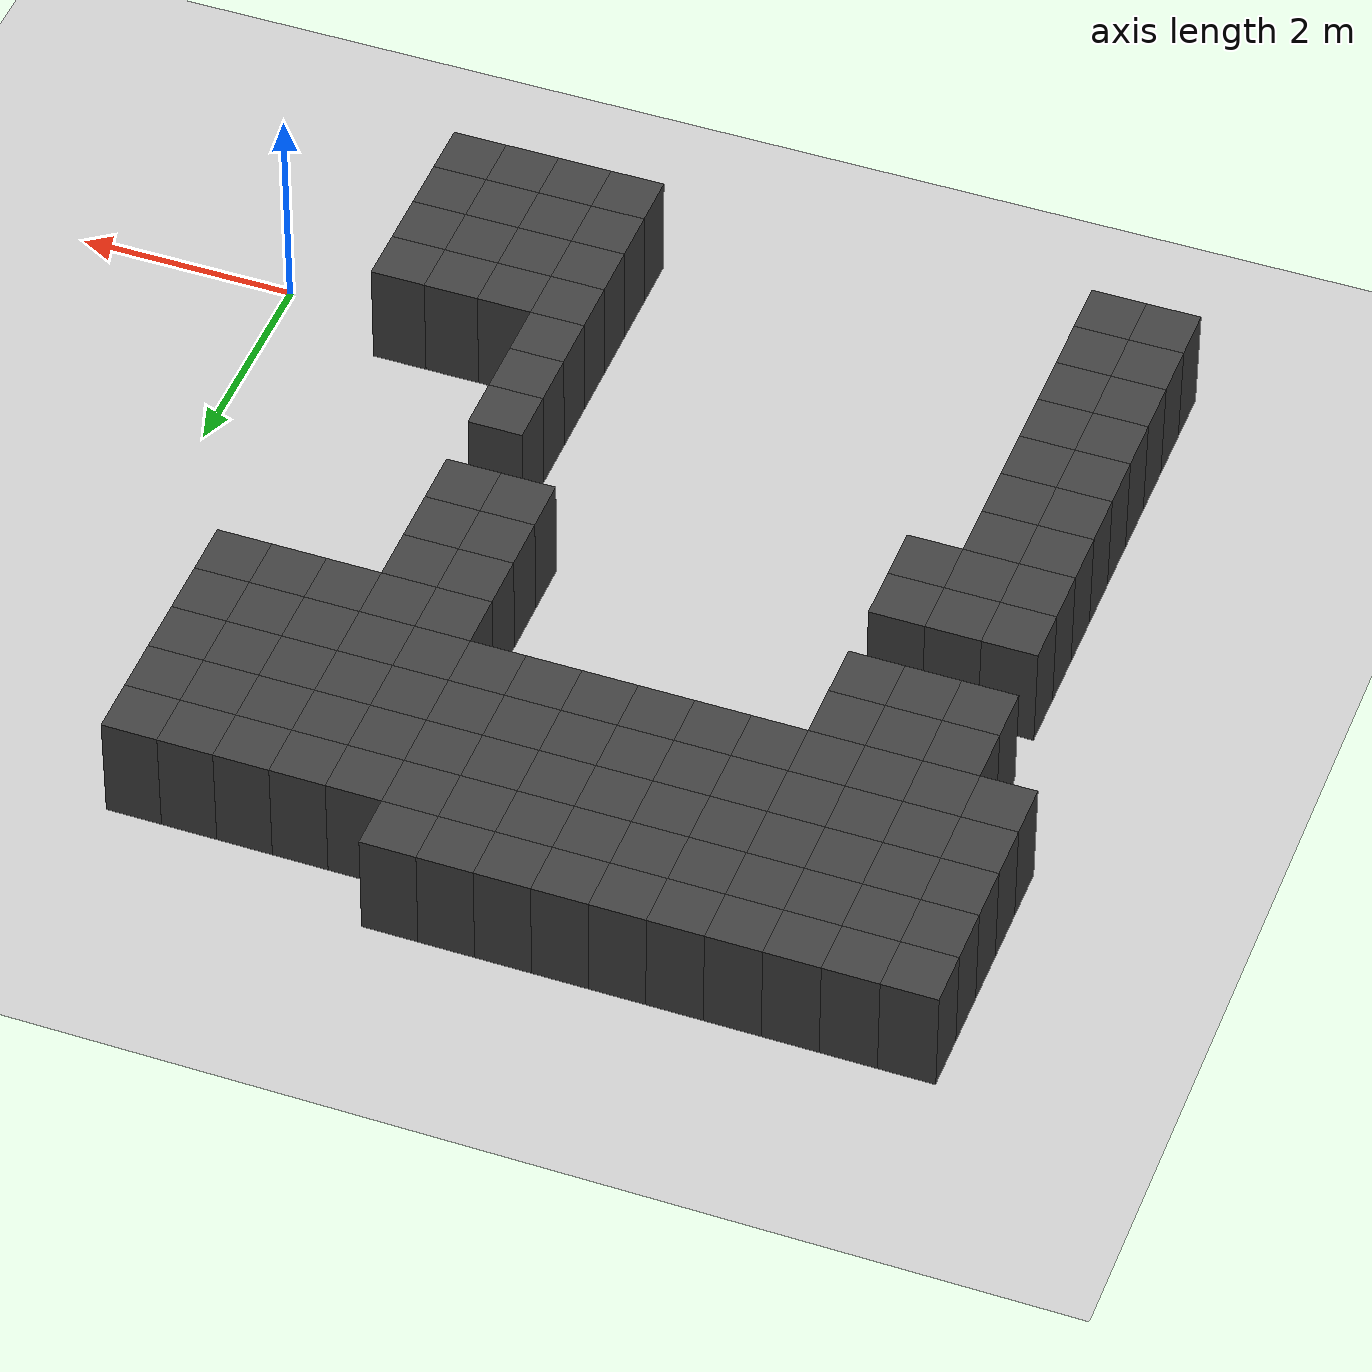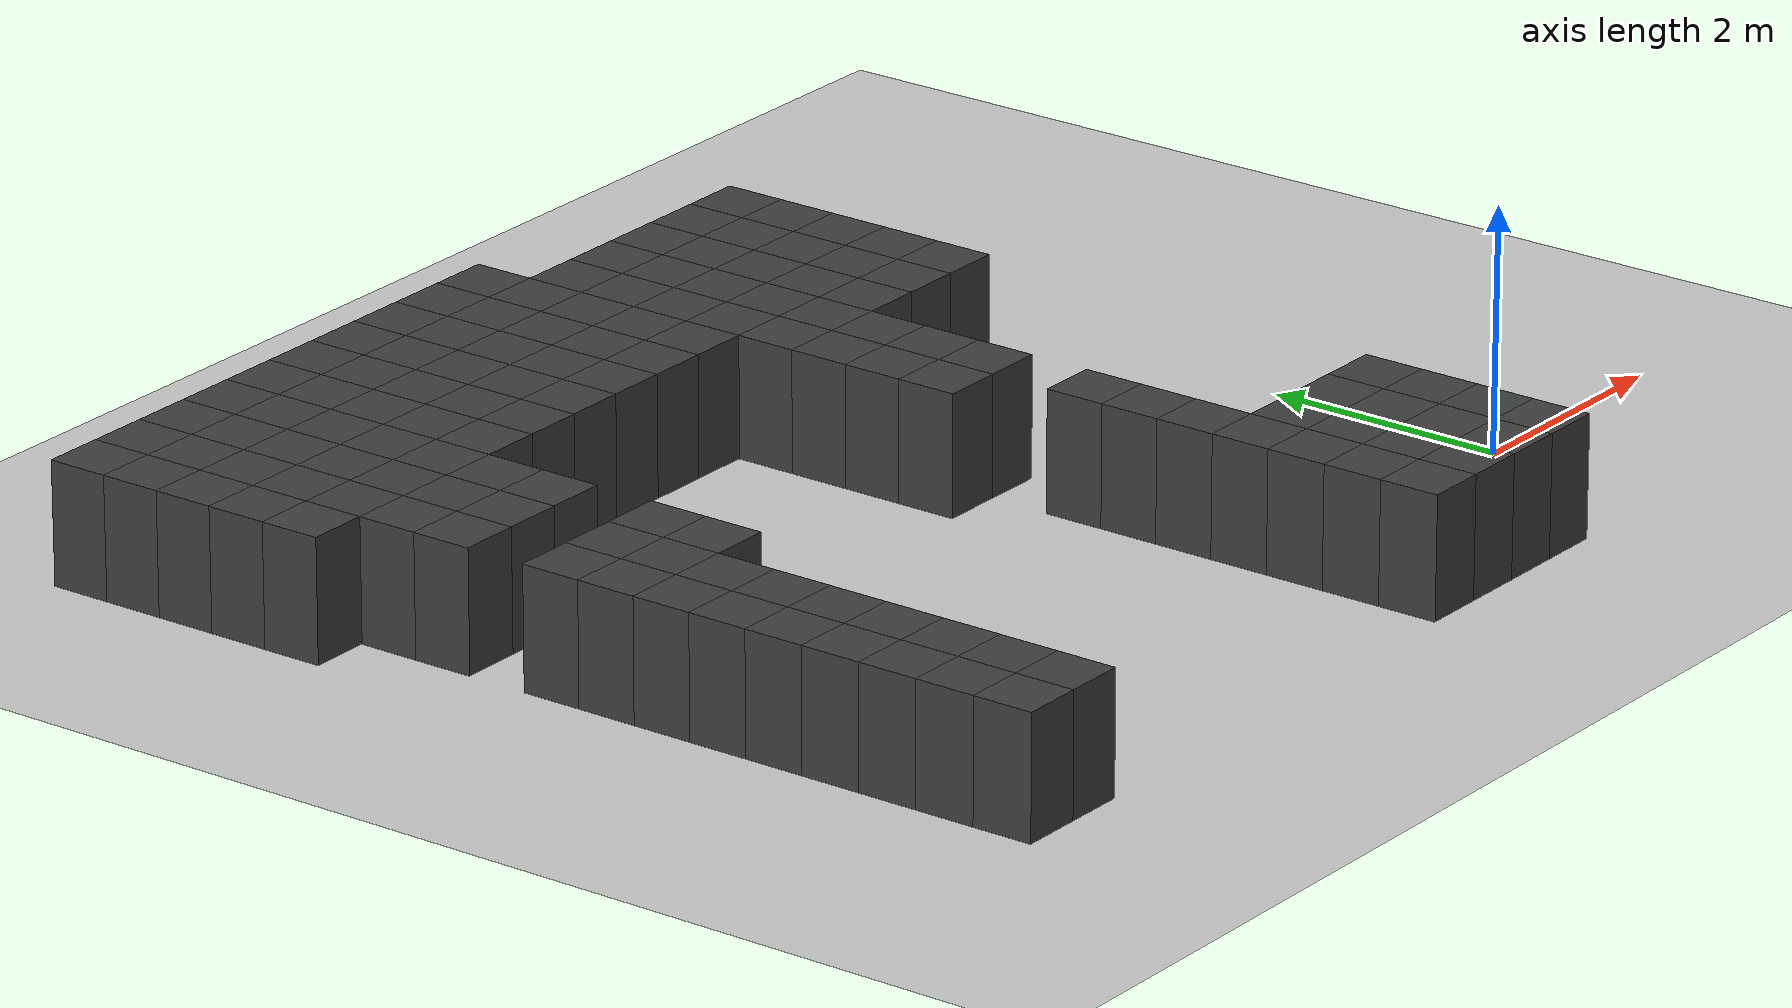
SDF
<sdf version="1.7">
 <world name="map_10764">
  <model name="ground_plane">
   <static>true</static>
   <link name="link">
    <collision name="collision">
     <geometry><plane><normal>0 0 1</normal><size>200 200</size></plane></geometry>
    </collision>
    <visual name="visual">
     <geometry><plane><normal>0 0 1</normal><size>200 200</size></plane></geometry>
     <material><ambient>0.8 0.8 0.8 1</ambient><diffuse>0.8 0.8 0.8 1</diffuse></material>
    </visual>
   </link>
  </model>
  <model name="maze_environment">
   <static>true</static>
   <link name="wall_502">
    <pose>-8.250 6.750 0.500 0 0 0</pose>
    <collision name="col"><geometry><box><size>0.5 0.5 1.0</size></box></geometry></collision>
    <visual name="vis">
     <geometry><box><size>0.5 0.5 1.0</size></box></geometry>
     <material><ambient>0.15 0.15 0.15 1</ambient><diffuse>0.25 0.25 0.25 1</diffuse></material>
    </visual>
   </link>
   <link name="wall_503">
    <pose>-7.750 6.750 0.500 0 0 0</pose>
    <collision name="col"><geometry><box><size>0.5 0.5 1.0</size></box></geometry></collision>
    <visual name="vis">
     <geometry><box><size>0.5 0.5 1.0</size></box></geometry>
     <material><ambient>0.15 0.15 0.15 1</ambient><diffuse>0.25 0.25 0.25 1</diffuse></material>
    </visual>
   </link>
   <link name="wall_504">
    <pose>-7.250 6.750 0.500 0 0 0</pose>
    <collision name="col"><geometry><box><size>0.5 0.5 1.0</size></box></geometry></collision>
    <visual name="vis">
     <geometry><box><size>0.5 0.5 1.0</size></box></geometry>
     <material><ambient>0.15 0.15 0.15 1</ambient><diffuse>0.25 0.25 0.25 1</diffuse></material>
    </visual>
   </link>
   <link name="wall_505">
    <pose>-6.750 6.750 0.500 0 0 0</pose>
    <collision name="col"><geometry><box><size>0.5 0.5 1.0</size></box></geometry></collision>
    <visual name="vis">
     <geometry><box><size>0.5 0.5 1.0</size></box></geometry>
     <material><ambient>0.15 0.15 0.15 1</ambient><diffuse>0.25 0.25 0.25 1</diffuse></material>
    </visual>
   </link>
   <link name="wall_506">
    <pose>-6.250 6.750 0.500 0 0 0</pose>
    <collision name="col"><geometry><box><size>0.5 0.5 1.0</size></box></geometry></collision>
    <visual name="vis">
     <geometry><box><size>0.5 0.5 1.0</size></box></geometry>
     <material><ambient>0.15 0.15 0.15 1</ambient><diffuse>0.25 0.25 0.25 1</diffuse></material>
    </visual>
   </link>
   <link name="wall_507">
    <pose>-5.750 6.750 0.500 0 0 0</pose>
    <collision name="col"><geometry><box><size>0.5 0.5 1.0</size></box></geometry></collision>
    <visual name="vis">
     <geometry><box><size>0.5 0.5 1.0</size></box></geometry>
     <material><ambient>0.15 0.15 0.15 1</ambient><diffuse>0.25 0.25 0.25 1</diffuse></material>
    </visual>
   </link>
   <link name="wall_508">
    <pose>-5.250 6.750 0.500 0 0 0</pose>
    <collision name="col"><geometry><box><size>0.5 0.5 1.0</size></box></geometry></collision>
    <visual name="vis">
     <geometry><box><size>0.5 0.5 1.0</size></box></geometry>
     <material><ambient>0.15 0.15 0.15 1</ambient><diffuse>0.25 0.25 0.25 1</diffuse></material>
    </visual>
   </link>
   <link name="wall_509">
    <pose>-4.750 6.750 0.500 0 0 0</pose>
    <collision name="col"><geometry><box><size>0.5 0.5 1.0</size></box></geometry></collision>
    <visual name="vis">
     <geometry><box><size>0.5 0.5 1.0</size></box></geometry>
     <material><ambient>0.15 0.15 0.15 1</ambient><diffuse>0.25 0.25 0.25 1</diffuse></material>
    </visual>
   </link>
   <link name="wall_510">
    <pose>-4.250 6.750 0.500 0 0 0</pose>
    <collision name="col"><geometry><box><size>0.5 0.5 1.0</size></box></geometry></collision>
    <visual name="vis">
     <geometry><box><size>0.5 0.5 1.0</size></box></geometry>
     <material><ambient>0.15 0.15 0.15 1</ambient><diffuse>0.25 0.25 0.25 1</diffuse></material>
    </visual>
   </link>
   <link name="wall_511">
    <pose>-3.750 6.750 0.500 0 0 0</pose>
    <collision name="col"><geometry><box><size>0.5 0.5 1.0</size></box></geometry></collision>
    <visual name="vis">
     <geometry><box><size>0.5 0.5 1.0</size></box></geometry>
     <material><ambient>0.15 0.15 0.15 1</ambient><diffuse>0.25 0.25 0.25 1</diffuse></material>
    </visual>
   </link>
   <link name="wall_550">
    <pose>-8.250 6.250 0.500 0 0 0</pose>
    <collision name="col"><geometry><box><size>0.5 0.5 1.0</size></box></geometry></collision>
    <visual name="vis">
     <geometry><box><size>0.5 0.5 1.0</size></box></geometry>
     <material><ambient>0.15 0.15 0.15 1</ambient><diffuse>0.25 0.25 0.25 1</diffuse></material>
    </visual>
   </link>
   <link name="wall_551">
    <pose>-7.750 6.250 0.500 0 0 0</pose>
    <collision name="col"><geometry><box><size>0.5 0.5 1.0</size></box></geometry></collision>
    <visual name="vis">
     <geometry><box><size>0.5 0.5 1.0</size></box></geometry>
     <material><ambient>0.15 0.15 0.15 1</ambient><diffuse>0.25 0.25 0.25 1</diffuse></material>
    </visual>
   </link>
   <link name="wall_552">
    <pose>-7.250 6.250 0.500 0 0 0</pose>
    <collision name="col"><geometry><box><size>0.5 0.5 1.0</size></box></geometry></collision>
    <visual name="vis">
     <geometry><box><size>0.5 0.5 1.0</size></box></geometry>
     <material><ambient>0.15 0.15 0.15 1</ambient><diffuse>0.25 0.25 0.25 1</diffuse></material>
    </visual>
   </link>
   <link name="wall_553">
    <pose>-6.750 6.250 0.500 0 0 0</pose>
    <collision name="col"><geometry><box><size>0.5 0.5 1.0</size></box></geometry></collision>
    <visual name="vis">
     <geometry><box><size>0.5 0.5 1.0</size></box></geometry>
     <material><ambient>0.15 0.15 0.15 1</ambient><diffuse>0.25 0.25 0.25 1</diffuse></material>
    </visual>
   </link>
   <link name="wall_554">
    <pose>-6.250 6.250 0.500 0 0 0</pose>
    <collision name="col"><geometry><box><size>0.5 0.5 1.0</size></box></geometry></collision>
    <visual name="vis">
     <geometry><box><size>0.5 0.5 1.0</size></box></geometry>
     <material><ambient>0.15 0.15 0.15 1</ambient><diffuse>0.25 0.25 0.25 1</diffuse></material>
    </visual>
   </link>
   <link name="wall_555">
    <pose>-5.750 6.250 0.500 0 0 0</pose>
    <collision name="col"><geometry><box><size>0.5 0.5 1.0</size></box></geometry></collision>
    <visual name="vis">
     <geometry><box><size>0.5 0.5 1.0</size></box></geometry>
     <material><ambient>0.15 0.15 0.15 1</ambient><diffuse>0.25 0.25 0.25 1</diffuse></material>
    </visual>
   </link>
   <link name="wall_556">
    <pose>-5.250 6.250 0.500 0 0 0</pose>
    <collision name="col"><geometry><box><size>0.5 0.5 1.0</size></box></geometry></collision>
    <visual name="vis">
     <geometry><box><size>0.5 0.5 1.0</size></box></geometry>
     <material><ambient>0.15 0.15 0.15 1</ambient><diffuse>0.25 0.25 0.25 1</diffuse></material>
    </visual>
   </link>
   <link name="wall_557">
    <pose>-4.750 6.250 0.500 0 0 0</pose>
    <collision name="col"><geometry><box><size>0.5 0.5 1.0</size></box></geometry></collision>
    <visual name="vis">
     <geometry><box><size>0.5 0.5 1.0</size></box></geometry>
     <material><ambient>0.15 0.15 0.15 1</ambient><diffuse>0.25 0.25 0.25 1</diffuse></material>
    </visual>
   </link>
   <link name="wall_558">
    <pose>-4.250 6.250 0.500 0 0 0</pose>
    <collision name="col"><geometry><box><size>0.5 0.5 1.0</size></box></geometry></collision>
    <visual name="vis">
     <geometry><box><size>0.5 0.5 1.0</size></box></geometry>
     <material><ambient>0.15 0.15 0.15 1</ambient><diffuse>0.25 0.25 0.25 1</diffuse></material>
    </visual>
   </link>
   <link name="wall_559">
    <pose>-3.750 6.250 0.500 0 0 0</pose>
    <collision name="col"><geometry><box><size>0.5 0.5 1.0</size></box></geometry></collision>
    <visual name="vis">
     <geometry><box><size>0.5 0.5 1.0</size></box></geometry>
     <material><ambient>0.15 0.15 0.15 1</ambient><diffuse>0.25 0.25 0.25 1</diffuse></material>
    </visual>
   </link>
   <link name="wall_560">
    <pose>-3.250 6.250 0.500 0 0 0</pose>
    <collision name="col"><geometry><box><size>0.5 0.5 1.0</size></box></geometry></collision>
    <visual name="vis">
     <geometry><box><size>0.5 0.5 1.0</size></box></geometry>
     <material><ambient>0.15 0.15 0.15 1</ambient><diffuse>0.25 0.25 0.25 1</diffuse></material>
    </visual>
   </link>
   <link name="wall_561">
    <pose>-2.750 6.250 0.500 0 0 0</pose>
    <collision name="col"><geometry><box><size>0.5 0.5 1.0</size></box></geometry></collision>
    <visual name="vis">
     <geometry><box><size>0.5 0.5 1.0</size></box></geometry>
     <material><ambient>0.15 0.15 0.15 1</ambient><diffuse>0.25 0.25 0.25 1</diffuse></material>
    </visual>
   </link>
   <link name="wall_562">
    <pose>-2.250 6.250 0.500 0 0 0</pose>
    <collision name="col"><geometry><box><size>0.5 0.5 1.0</size></box></geometry></collision>
    <visual name="vis">
     <geometry><box><size>0.5 0.5 1.0</size></box></geometry>
     <material><ambient>0.15 0.15 0.15 1</ambient><diffuse>0.25 0.25 0.25 1</diffuse></material>
    </visual>
   </link>
   <link name="wall_563">
    <pose>-1.750 6.250 0.500 0 0 0</pose>
    <collision name="col"><geometry><box><size>0.5 0.5 1.0</size></box></geometry></collision>
    <visual name="vis">
     <geometry><box><size>0.5 0.5 1.0</size></box></geometry>
     <material><ambient>0.15 0.15 0.15 1</ambient><diffuse>0.25 0.25 0.25 1</diffuse></material>
    </visual>
   </link>
   <link name="wall_564">
    <pose>-1.250 6.250 0.500 0 0 0</pose>
    <collision name="col"><geometry><box><size>0.5 0.5 1.0</size></box></geometry></collision>
    <visual name="vis">
     <geometry><box><size>0.5 0.5 1.0</size></box></geometry>
     <material><ambient>0.15 0.15 0.15 1</ambient><diffuse>0.25 0.25 0.25 1</diffuse></material>
    </visual>
   </link>
   <link name="wall_598">
    <pose>-8.250 5.750 0.500 0 0 0</pose>
    <collision name="col"><geometry><box><size>0.5 0.5 1.0</size></box></geometry></collision>
    <visual name="vis">
     <geometry><box><size>0.5 0.5 1.0</size></box></geometry>
     <material><ambient>0.15 0.15 0.15 1</ambient><diffuse>0.25 0.25 0.25 1</diffuse></material>
    </visual>
   </link>
   <link name="wall_599">
    <pose>-7.750 5.750 0.500 0 0 0</pose>
    <collision name="col"><geometry><box><size>0.5 0.5 1.0</size></box></geometry></collision>
    <visual name="vis">
     <geometry><box><size>0.5 0.5 1.0</size></box></geometry>
     <material><ambient>0.15 0.15 0.15 1</ambient><diffuse>0.25 0.25 0.25 1</diffuse></material>
    </visual>
   </link>
   <link name="wall_600">
    <pose>-7.250 5.750 0.500 0 0 0</pose>
    <collision name="col"><geometry><box><size>0.5 0.5 1.0</size></box></geometry></collision>
    <visual name="vis">
     <geometry><box><size>0.5 0.5 1.0</size></box></geometry>
     <material><ambient>0.15 0.15 0.15 1</ambient><diffuse>0.25 0.25 0.25 1</diffuse></material>
    </visual>
   </link>
   <link name="wall_601">
    <pose>-6.750 5.750 0.500 0 0 0</pose>
    <collision name="col"><geometry><box><size>0.5 0.5 1.0</size></box></geometry></collision>
    <visual name="vis">
     <geometry><box><size>0.5 0.5 1.0</size></box></geometry>
     <material><ambient>0.15 0.15 0.15 1</ambient><diffuse>0.25 0.25 0.25 1</diffuse></material>
    </visual>
   </link>
   <link name="wall_602">
    <pose>-6.250 5.750 0.500 0 0 0</pose>
    <collision name="col"><geometry><box><size>0.5 0.5 1.0</size></box></geometry></collision>
    <visual name="vis">
     <geometry><box><size>0.5 0.5 1.0</size></box></geometry>
     <material><ambient>0.15 0.15 0.15 1</ambient><diffuse>0.25 0.25 0.25 1</diffuse></material>
    </visual>
   </link>
   <link name="wall_603">
    <pose>-5.750 5.750 0.500 0 0 0</pose>
    <collision name="col"><geometry><box><size>0.5 0.5 1.0</size></box></geometry></collision>
    <visual name="vis">
     <geometry><box><size>0.5 0.5 1.0</size></box></geometry>
     <material><ambient>0.15 0.15 0.15 1</ambient><diffuse>0.25 0.25 0.25 1</diffuse></material>
    </visual>
   </link>
   <link name="wall_604">
    <pose>-5.250 5.750 0.500 0 0 0</pose>
    <collision name="col"><geometry><box><size>0.5 0.5 1.0</size></box></geometry></collision>
    <visual name="vis">
     <geometry><box><size>0.5 0.5 1.0</size></box></geometry>
     <material><ambient>0.15 0.15 0.15 1</ambient><diffuse>0.25 0.25 0.25 1</diffuse></material>
    </visual>
   </link>
   <link name="wall_605">
    <pose>-4.750 5.750 0.500 0 0 0</pose>
    <collision name="col"><geometry><box><size>0.5 0.5 1.0</size></box></geometry></collision>
    <visual name="vis">
     <geometry><box><size>0.5 0.5 1.0</size></box></geometry>
     <material><ambient>0.15 0.15 0.15 1</ambient><diffuse>0.25 0.25 0.25 1</diffuse></material>
    </visual>
   </link>
   <link name="wall_606">
    <pose>-4.250 5.750 0.500 0 0 0</pose>
    <collision name="col"><geometry><box><size>0.5 0.5 1.0</size></box></geometry></collision>
    <visual name="vis">
     <geometry><box><size>0.5 0.5 1.0</size></box></geometry>
     <material><ambient>0.15 0.15 0.15 1</ambient><diffuse>0.25 0.25 0.25 1</diffuse></material>
    </visual>
   </link>
   <link name="wall_607">
    <pose>-3.750 5.750 0.500 0 0 0</pose>
    <collision name="col"><geometry><box><size>0.5 0.5 1.0</size></box></geometry></collision>
    <visual name="vis">
     <geometry><box><size>0.5 0.5 1.0</size></box></geometry>
     <material><ambient>0.15 0.15 0.15 1</ambient><diffuse>0.25 0.25 0.25 1</diffuse></material>
    </visual>
   </link>
   <link name="wall_608">
    <pose>-3.250 5.750 0.500 0 0 0</pose>
    <collision name="col"><geometry><box><size>0.5 0.5 1.0</size></box></geometry></collision>
    <visual name="vis">
     <geometry><box><size>0.5 0.5 1.0</size></box></geometry>
     <material><ambient>0.15 0.15 0.15 1</ambient><diffuse>0.25 0.25 0.25 1</diffuse></material>
    </visual>
   </link>
   <link name="wall_609">
    <pose>-2.750 5.750 0.500 0 0 0</pose>
    <collision name="col"><geometry><box><size>0.5 0.5 1.0</size></box></geometry></collision>
    <visual name="vis">
     <geometry><box><size>0.5 0.5 1.0</size></box></geometry>
     <material><ambient>0.15 0.15 0.15 1</ambient><diffuse>0.25 0.25 0.25 1</diffuse></material>
    </visual>
   </link>
   <link name="wall_610">
    <pose>-2.250 5.750 0.500 0 0 0</pose>
    <collision name="col"><geometry><box><size>0.5 0.5 1.0</size></box></geometry></collision>
    <visual name="vis">
     <geometry><box><size>0.5 0.5 1.0</size></box></geometry>
     <material><ambient>0.15 0.15 0.15 1</ambient><diffuse>0.25 0.25 0.25 1</diffuse></material>
    </visual>
   </link>
   <link name="wall_611">
    <pose>-1.750 5.750 0.500 0 0 0</pose>
    <collision name="col"><geometry><box><size>0.5 0.5 1.0</size></box></geometry></collision>
    <visual name="vis">
     <geometry><box><size>0.5 0.5 1.0</size></box></geometry>
     <material><ambient>0.15 0.15 0.15 1</ambient><diffuse>0.25 0.25 0.25 1</diffuse></material>
    </visual>
   </link>
   <link name="wall_612">
    <pose>-1.250 5.750 0.500 0 0 0</pose>
    <collision name="col"><geometry><box><size>0.5 0.5 1.0</size></box></geometry></collision>
    <visual name="vis">
     <geometry><box><size>0.5 0.5 1.0</size></box></geometry>
     <material><ambient>0.15 0.15 0.15 1</ambient><diffuse>0.25 0.25 0.25 1</diffuse></material>
    </visual>
   </link>
   <link name="wall_646">
    <pose>-8.250 5.250 0.500 0 0 0</pose>
    <collision name="col"><geometry><box><size>0.5 0.5 1.0</size></box></geometry></collision>
    <visual name="vis">
     <geometry><box><size>0.5 0.5 1.0</size></box></geometry>
     <material><ambient>0.15 0.15 0.15 1</ambient><diffuse>0.25 0.25 0.25 1</diffuse></material>
    </visual>
   </link>
   <link name="wall_647">
    <pose>-7.750 5.250 0.500 0 0 0</pose>
    <collision name="col"><geometry><box><size>0.5 0.5 1.0</size></box></geometry></collision>
    <visual name="vis">
     <geometry><box><size>0.5 0.5 1.0</size></box></geometry>
     <material><ambient>0.15 0.15 0.15 1</ambient><diffuse>0.25 0.25 0.25 1</diffuse></material>
    </visual>
   </link>
   <link name="wall_648">
    <pose>-7.250 5.250 0.500 0 0 0</pose>
    <collision name="col"><geometry><box><size>0.5 0.5 1.0</size></box></geometry></collision>
    <visual name="vis">
     <geometry><box><size>0.5 0.5 1.0</size></box></geometry>
     <material><ambient>0.15 0.15 0.15 1</ambient><diffuse>0.25 0.25 0.25 1</diffuse></material>
    </visual>
   </link>
   <link name="wall_649">
    <pose>-6.750 5.250 0.500 0 0 0</pose>
    <collision name="col"><geometry><box><size>0.5 0.5 1.0</size></box></geometry></collision>
    <visual name="vis">
     <geometry><box><size>0.5 0.5 1.0</size></box></geometry>
     <material><ambient>0.15 0.15 0.15 1</ambient><diffuse>0.25 0.25 0.25 1</diffuse></material>
    </visual>
   </link>
   <link name="wall_650">
    <pose>-6.250 5.250 0.500 0 0 0</pose>
    <collision name="col"><geometry><box><size>0.5 0.5 1.0</size></box></geometry></collision>
    <visual name="vis">
     <geometry><box><size>0.5 0.5 1.0</size></box></geometry>
     <material><ambient>0.15 0.15 0.15 1</ambient><diffuse>0.25 0.25 0.25 1</diffuse></material>
    </visual>
   </link>
   <link name="wall_651">
    <pose>-5.750 5.250 0.500 0 0 0</pose>
    <collision name="col"><geometry><box><size>0.5 0.5 1.0</size></box></geometry></collision>
    <visual name="vis">
     <geometry><box><size>0.5 0.5 1.0</size></box></geometry>
     <material><ambient>0.15 0.15 0.15 1</ambient><diffuse>0.25 0.25 0.25 1</diffuse></material>
    </visual>
   </link>
   <link name="wall_652">
    <pose>-5.250 5.250 0.500 0 0 0</pose>
    <collision name="col"><geometry><box><size>0.5 0.5 1.0</size></box></geometry></collision>
    <visual name="vis">
     <geometry><box><size>0.5 0.5 1.0</size></box></geometry>
     <material><ambient>0.15 0.15 0.15 1</ambient><diffuse>0.25 0.25 0.25 1</diffuse></material>
    </visual>
   </link>
   <link name="wall_653">
    <pose>-4.750 5.250 0.500 0 0 0</pose>
    <collision name="col"><geometry><box><size>0.5 0.5 1.0</size></box></geometry></collision>
    <visual name="vis">
     <geometry><box><size>0.5 0.5 1.0</size></box></geometry>
     <material><ambient>0.15 0.15 0.15 1</ambient><diffuse>0.25 0.25 0.25 1</diffuse></material>
    </visual>
   </link>
   <link name="wall_654">
    <pose>-4.250 5.250 0.500 0 0 0</pose>
    <collision name="col"><geometry><box><size>0.5 0.5 1.0</size></box></geometry></collision>
    <visual name="vis">
     <geometry><box><size>0.5 0.5 1.0</size></box></geometry>
     <material><ambient>0.15 0.15 0.15 1</ambient><diffuse>0.25 0.25 0.25 1</diffuse></material>
    </visual>
   </link>
   <link name="wall_655">
    <pose>-3.750 5.250 0.500 0 0 0</pose>
    <collision name="col"><geometry><box><size>0.5 0.5 1.0</size></box></geometry></collision>
    <visual name="vis">
     <geometry><box><size>0.5 0.5 1.0</size></box></geometry>
     <material><ambient>0.15 0.15 0.15 1</ambient><diffuse>0.25 0.25 0.25 1</diffuse></material>
    </visual>
   </link>
   <link name="wall_656">
    <pose>-3.250 5.250 0.500 0 0 0</pose>
    <collision name="col"><geometry><box><size>0.5 0.5 1.0</size></box></geometry></collision>
    <visual name="vis">
     <geometry><box><size>0.5 0.5 1.0</size></box></geometry>
     <material><ambient>0.15 0.15 0.15 1</ambient><diffuse>0.25 0.25 0.25 1</diffuse></material>
    </visual>
   </link>
   <link name="wall_657">
    <pose>-2.750 5.250 0.500 0 0 0</pose>
    <collision name="col"><geometry><box><size>0.5 0.5 1.0</size></box></geometry></collision>
    <visual name="vis">
     <geometry><box><size>0.5 0.5 1.0</size></box></geometry>
     <material><ambient>0.15 0.15 0.15 1</ambient><diffuse>0.25 0.25 0.25 1</diffuse></material>
    </visual>
   </link>
   <link name="wall_658">
    <pose>-2.250 5.250 0.500 0 0 0</pose>
    <collision name="col"><geometry><box><size>0.5 0.5 1.0</size></box></geometry></collision>
    <visual name="vis">
     <geometry><box><size>0.5 0.5 1.0</size></box></geometry>
     <material><ambient>0.15 0.15 0.15 1</ambient><diffuse>0.25 0.25 0.25 1</diffuse></material>
    </visual>
   </link>
   <link name="wall_659">
    <pose>-1.750 5.250 0.500 0 0 0</pose>
    <collision name="col"><geometry><box><size>0.5 0.5 1.0</size></box></geometry></collision>
    <visual name="vis">
     <geometry><box><size>0.5 0.5 1.0</size></box></geometry>
     <material><ambient>0.15 0.15 0.15 1</ambient><diffuse>0.25 0.25 0.25 1</diffuse></material>
    </visual>
   </link>
   <link name="wall_660">
    <pose>-1.250 5.250 0.500 0 0 0</pose>
    <collision name="col"><geometry><box><size>0.5 0.5 1.0</size></box></geometry></collision>
    <visual name="vis">
     <geometry><box><size>0.5 0.5 1.0</size></box></geometry>
     <material><ambient>0.15 0.15 0.15 1</ambient><diffuse>0.25 0.25 0.25 1</diffuse></material>
    </visual>
   </link>
   <link name="wall_694">
    <pose>-8.250 4.750 0.500 0 0 0</pose>
    <collision name="col"><geometry><box><size>0.5 0.5 1.0</size></box></geometry></collision>
    <visual name="vis">
     <geometry><box><size>0.5 0.5 1.0</size></box></geometry>
     <material><ambient>0.15 0.15 0.15 1</ambient><diffuse>0.25 0.25 0.25 1</diffuse></material>
    </visual>
   </link>
   <link name="wall_695">
    <pose>-7.750 4.750 0.500 0 0 0</pose>
    <collision name="col"><geometry><box><size>0.5 0.5 1.0</size></box></geometry></collision>
    <visual name="vis">
     <geometry><box><size>0.5 0.5 1.0</size></box></geometry>
     <material><ambient>0.15 0.15 0.15 1</ambient><diffuse>0.25 0.25 0.25 1</diffuse></material>
    </visual>
   </link>
   <link name="wall_696">
    <pose>-7.250 4.750 0.500 0 0 0</pose>
    <collision name="col"><geometry><box><size>0.5 0.5 1.0</size></box></geometry></collision>
    <visual name="vis">
     <geometry><box><size>0.5 0.5 1.0</size></box></geometry>
     <material><ambient>0.15 0.15 0.15 1</ambient><diffuse>0.25 0.25 0.25 1</diffuse></material>
    </visual>
   </link>
   <link name="wall_697">
    <pose>-6.750 4.750 0.500 0 0 0</pose>
    <collision name="col"><geometry><box><size>0.5 0.5 1.0</size></box></geometry></collision>
    <visual name="vis">
     <geometry><box><size>0.5 0.5 1.0</size></box></geometry>
     <material><ambient>0.15 0.15 0.15 1</ambient><diffuse>0.25 0.25 0.25 1</diffuse></material>
    </visual>
   </link>
   <link name="wall_698">
    <pose>-6.250 4.750 0.500 0 0 0</pose>
    <collision name="col"><geometry><box><size>0.5 0.5 1.0</size></box></geometry></collision>
    <visual name="vis">
     <geometry><box><size>0.5 0.5 1.0</size></box></geometry>
     <material><ambient>0.15 0.15 0.15 1</ambient><diffuse>0.25 0.25 0.25 1</diffuse></material>
    </visual>
   </link>
   <link name="wall_699">
    <pose>-5.750 4.750 0.500 0 0 0</pose>
    <collision name="col"><geometry><box><size>0.5 0.5 1.0</size></box></geometry></collision>
    <visual name="vis">
     <geometry><box><size>0.5 0.5 1.0</size></box></geometry>
     <material><ambient>0.15 0.15 0.15 1</ambient><diffuse>0.25 0.25 0.25 1</diffuse></material>
    </visual>
   </link>
   <link name="wall_700">
    <pose>-5.250 4.750 0.500 0 0 0</pose>
    <collision name="col"><geometry><box><size>0.5 0.5 1.0</size></box></geometry></collision>
    <visual name="vis">
     <geometry><box><size>0.5 0.5 1.0</size></box></geometry>
     <material><ambient>0.15 0.15 0.15 1</ambient><diffuse>0.25 0.25 0.25 1</diffuse></material>
    </visual>
   </link>
   <link name="wall_701">
    <pose>-4.750 4.750 0.500 0 0 0</pose>
    <collision name="col"><geometry><box><size>0.5 0.5 1.0</size></box></geometry></collision>
    <visual name="vis">
     <geometry><box><size>0.5 0.5 1.0</size></box></geometry>
     <material><ambient>0.15 0.15 0.15 1</ambient><diffuse>0.25 0.25 0.25 1</diffuse></material>
    </visual>
   </link>
   <link name="wall_702">
    <pose>-4.250 4.750 0.500 0 0 0</pose>
    <collision name="col"><geometry><box><size>0.5 0.5 1.0</size></box></geometry></collision>
    <visual name="vis">
     <geometry><box><size>0.5 0.5 1.0</size></box></geometry>
     <material><ambient>0.15 0.15 0.15 1</ambient><diffuse>0.25 0.25 0.25 1</diffuse></material>
    </visual>
   </link>
   <link name="wall_703">
    <pose>-3.750 4.750 0.500 0 0 0</pose>
    <collision name="col"><geometry><box><size>0.5 0.5 1.0</size></box></geometry></collision>
    <visual name="vis">
     <geometry><box><size>0.5 0.5 1.0</size></box></geometry>
     <material><ambient>0.15 0.15 0.15 1</ambient><diffuse>0.25 0.25 0.25 1</diffuse></material>
    </visual>
   </link>
   <link name="wall_704">
    <pose>-3.250 4.750 0.500 0 0 0</pose>
    <collision name="col"><geometry><box><size>0.5 0.5 1.0</size></box></geometry></collision>
    <visual name="vis">
     <geometry><box><size>0.5 0.5 1.0</size></box></geometry>
     <material><ambient>0.15 0.15 0.15 1</ambient><diffuse>0.25 0.25 0.25 1</diffuse></material>
    </visual>
   </link>
   <link name="wall_705">
    <pose>-2.750 4.750 0.500 0 0 0</pose>
    <collision name="col"><geometry><box><size>0.5 0.5 1.0</size></box></geometry></collision>
    <visual name="vis">
     <geometry><box><size>0.5 0.5 1.0</size></box></geometry>
     <material><ambient>0.15 0.15 0.15 1</ambient><diffuse>0.25 0.25 0.25 1</diffuse></material>
    </visual>
   </link>
   <link name="wall_706">
    <pose>-2.250 4.750 0.500 0 0 0</pose>
    <collision name="col"><geometry><box><size>0.5 0.5 1.0</size></box></geometry></collision>
    <visual name="vis">
     <geometry><box><size>0.5 0.5 1.0</size></box></geometry>
     <material><ambient>0.15 0.15 0.15 1</ambient><diffuse>0.25 0.25 0.25 1</diffuse></material>
    </visual>
   </link>
   <link name="wall_707">
    <pose>-1.750 4.750 0.500 0 0 0</pose>
    <collision name="col"><geometry><box><size>0.5 0.5 1.0</size></box></geometry></collision>
    <visual name="vis">
     <geometry><box><size>0.5 0.5 1.0</size></box></geometry>
     <material><ambient>0.15 0.15 0.15 1</ambient><diffuse>0.25 0.25 0.25 1</diffuse></material>
    </visual>
   </link>
   <link name="wall_708">
    <pose>-1.250 4.750 0.500 0 0 0</pose>
    <collision name="col"><geometry><box><size>0.5 0.5 1.0</size></box></geometry></collision>
    <visual name="vis">
     <geometry><box><size>0.5 0.5 1.0</size></box></geometry>
     <material><ambient>0.15 0.15 0.15 1</ambient><diffuse>0.25 0.25 0.25 1</diffuse></material>
    </visual>
   </link>
   <link name="wall_743">
    <pose>-7.750 4.250 0.500 0 0 0</pose>
    <collision name="col"><geometry><box><size>0.5 0.5 1.0</size></box></geometry></collision>
    <visual name="vis">
     <geometry><box><size>0.5 0.5 1.0</size></box></geometry>
     <material><ambient>0.15 0.15 0.15 1</ambient><diffuse>0.25 0.25 0.25 1</diffuse></material>
    </visual>
   </link>
   <link name="wall_744">
    <pose>-7.250 4.250 0.500 0 0 0</pose>
    <collision name="col"><geometry><box><size>0.5 0.5 1.0</size></box></geometry></collision>
    <visual name="vis">
     <geometry><box><size>0.5 0.5 1.0</size></box></geometry>
     <material><ambient>0.15 0.15 0.15 1</ambient><diffuse>0.25 0.25 0.25 1</diffuse></material>
    </visual>
   </link>
   <link name="wall_745">
    <pose>-6.750 4.250 0.500 0 0 0</pose>
    <collision name="col"><geometry><box><size>0.5 0.5 1.0</size></box></geometry></collision>
    <visual name="vis">
     <geometry><box><size>0.5 0.5 1.0</size></box></geometry>
     <material><ambient>0.15 0.15 0.15 1</ambient><diffuse>0.25 0.25 0.25 1</diffuse></material>
    </visual>
   </link>
   <link name="wall_746">
    <pose>-3.250 4.250 0.500 0 0 0</pose>
    <collision name="col"><geometry><box><size>0.5 0.5 1.0</size></box></geometry></collision>
    <visual name="vis">
     <geometry><box><size>0.5 0.5 1.0</size></box></geometry>
     <material><ambient>0.15 0.15 0.15 1</ambient><diffuse>0.25 0.25 0.25 1</diffuse></material>
    </visual>
   </link>
   <link name="wall_747">
    <pose>-2.750 4.250 0.500 0 0 0</pose>
    <collision name="col"><geometry><box><size>0.5 0.5 1.0</size></box></geometry></collision>
    <visual name="vis">
     <geometry><box><size>0.5 0.5 1.0</size></box></geometry>
     <material><ambient>0.15 0.15 0.15 1</ambient><diffuse>0.25 0.25 0.25 1</diffuse></material>
    </visual>
   </link>
   <link name="wall_748">
    <pose>-2.250 4.250 0.500 0 0 0</pose>
    <collision name="col"><geometry><box><size>0.5 0.5 1.0</size></box></geometry></collision>
    <visual name="vis">
     <geometry><box><size>0.5 0.5 1.0</size></box></geometry>
     <material><ambient>0.15 0.15 0.15 1</ambient><diffuse>0.25 0.25 0.25 1</diffuse></material>
    </visual>
   </link>
   <link name="wall_749">
    <pose>-1.750 4.250 0.500 0 0 0</pose>
    <collision name="col"><geometry><box><size>0.5 0.5 1.0</size></box></geometry></collision>
    <visual name="vis">
     <geometry><box><size>0.5 0.5 1.0</size></box></geometry>
     <material><ambient>0.15 0.15 0.15 1</ambient><diffuse>0.25 0.25 0.25 1</diffuse></material>
    </visual>
   </link>
   <link name="wall_750">
    <pose>-1.250 4.250 0.500 0 0 0</pose>
    <collision name="col"><geometry><box><size>0.5 0.5 1.0</size></box></geometry></collision>
    <visual name="vis">
     <geometry><box><size>0.5 0.5 1.0</size></box></geometry>
     <material><ambient>0.15 0.15 0.15 1</ambient><diffuse>0.25 0.25 0.25 1</diffuse></material>
    </visual>
   </link>
   <link name="wall_781">
    <pose>-7.750 3.750 0.500 0 0 0</pose>
    <collision name="col"><geometry><box><size>0.5 0.5 1.0</size></box></geometry></collision>
    <visual name="vis">
     <geometry><box><size>0.5 0.5 1.0</size></box></geometry>
     <material><ambient>0.15 0.15 0.15 1</ambient><diffuse>0.25 0.25 0.25 1</diffuse></material>
    </visual>
   </link>
   <link name="wall_782">
    <pose>-7.250 3.750 0.500 0 0 0</pose>
    <collision name="col"><geometry><box><size>0.5 0.5 1.0</size></box></geometry></collision>
    <visual name="vis">
     <geometry><box><size>0.5 0.5 1.0</size></box></geometry>
     <material><ambient>0.15 0.15 0.15 1</ambient><diffuse>0.25 0.25 0.25 1</diffuse></material>
    </visual>
   </link>
   <link name="wall_783">
    <pose>-6.750 3.750 0.500 0 0 0</pose>
    <collision name="col"><geometry><box><size>0.5 0.5 1.0</size></box></geometry></collision>
    <visual name="vis">
     <geometry><box><size>0.5 0.5 1.0</size></box></geometry>
     <material><ambient>0.15 0.15 0.15 1</ambient><diffuse>0.25 0.25 0.25 1</diffuse></material>
    </visual>
   </link>
   <link name="wall_784">
    <pose>-3.250 3.750 0.500 0 0 0</pose>
    <collision name="col"><geometry><box><size>0.5 0.5 1.0</size></box></geometry></collision>
    <visual name="vis">
     <geometry><box><size>0.5 0.5 1.0</size></box></geometry>
     <material><ambient>0.15 0.15 0.15 1</ambient><diffuse>0.25 0.25 0.25 1</diffuse></material>
    </visual>
   </link>
   <link name="wall_785">
    <pose>-2.750 3.750 0.500 0 0 0</pose>
    <collision name="col"><geometry><box><size>0.5 0.5 1.0</size></box></geometry></collision>
    <visual name="vis">
     <geometry><box><size>0.5 0.5 1.0</size></box></geometry>
     <material><ambient>0.15 0.15 0.15 1</ambient><diffuse>0.25 0.25 0.25 1</diffuse></material>
    </visual>
   </link>
   <link name="wall_808">
    <pose>-3.250 3.250 0.500 0 0 0</pose>
    <collision name="col"><geometry><box><size>0.5 0.5 1.0</size></box></geometry></collision>
    <visual name="vis">
     <geometry><box><size>0.5 0.5 1.0</size></box></geometry>
     <material><ambient>0.15 0.15 0.15 1</ambient><diffuse>0.25 0.25 0.25 1</diffuse></material>
    </visual>
   </link>
   <link name="wall_809">
    <pose>-2.750 3.250 0.500 0 0 0</pose>
    <collision name="col"><geometry><box><size>0.5 0.5 1.0</size></box></geometry></collision>
    <visual name="vis">
     <geometry><box><size>0.5 0.5 1.0</size></box></geometry>
     <material><ambient>0.15 0.15 0.15 1</ambient><diffuse>0.25 0.25 0.25 1</diffuse></material>
    </visual>
   </link>
   <link name="wall_839">
    <pose>-7.750 2.750 0.500 0 0 0</pose>
    <collision name="col"><geometry><box><size>0.5 0.5 1.0</size></box></geometry></collision>
    <visual name="vis">
     <geometry><box><size>0.5 0.5 1.0</size></box></geometry>
     <material><ambient>0.15 0.15 0.15 1</ambient><diffuse>0.25 0.25 0.25 1</diffuse></material>
    </visual>
   </link>
   <link name="wall_840">
    <pose>-7.250 2.750 0.500 0 0 0</pose>
    <collision name="col"><geometry><box><size>0.5 0.5 1.0</size></box></geometry></collision>
    <visual name="vis">
     <geometry><box><size>0.5 0.5 1.0</size></box></geometry>
     <material><ambient>0.15 0.15 0.15 1</ambient><diffuse>0.25 0.25 0.25 1</diffuse></material>
    </visual>
   </link>
   <link name="wall_841">
    <pose>-6.750 2.750 0.500 0 0 0</pose>
    <collision name="col"><geometry><box><size>0.5 0.5 1.0</size></box></geometry></collision>
    <visual name="vis">
     <geometry><box><size>0.5 0.5 1.0</size></box></geometry>
     <material><ambient>0.15 0.15 0.15 1</ambient><diffuse>0.25 0.25 0.25 1</diffuse></material>
    </visual>
   </link>
   <link name="wall_842">
    <pose>-3.250 2.750 0.500 0 0 0</pose>
    <collision name="col"><geometry><box><size>0.5 0.5 1.0</size></box></geometry></collision>
    <visual name="vis">
     <geometry><box><size>0.5 0.5 1.0</size></box></geometry>
     <material><ambient>0.15 0.15 0.15 1</ambient><diffuse>0.25 0.25 0.25 1</diffuse></material>
    </visual>
   </link>
   <link name="wall_843">
    <pose>-2.750 2.750 0.500 0 0 0</pose>
    <collision name="col"><geometry><box><size>0.5 0.5 1.0</size></box></geometry></collision>
    <visual name="vis">
     <geometry><box><size>0.5 0.5 1.0</size></box></geometry>
     <material><ambient>0.15 0.15 0.15 1</ambient><diffuse>0.25 0.25 0.25 1</diffuse></material>
    </visual>
   </link>
   <link name="wall_861">
    <pose>-7.750 2.250 0.500 0 0 0</pose>
    <collision name="col"><geometry><box><size>0.5 0.5 1.0</size></box></geometry></collision>
    <visual name="vis">
     <geometry><box><size>0.5 0.5 1.0</size></box></geometry>
     <material><ambient>0.15 0.15 0.15 1</ambient><diffuse>0.25 0.25 0.25 1</diffuse></material>
    </visual>
   </link>
   <link name="wall_862">
    <pose>-7.250 2.250 0.500 0 0 0</pose>
    <collision name="col"><geometry><box><size>0.5 0.5 1.0</size></box></geometry></collision>
    <visual name="vis">
     <geometry><box><size>0.5 0.5 1.0</size></box></geometry>
     <material><ambient>0.15 0.15 0.15 1</ambient><diffuse>0.25 0.25 0.25 1</diffuse></material>
    </visual>
   </link>
   <link name="wall_863">
    <pose>-6.750 2.250 0.500 0 0 0</pose>
    <collision name="col"><geometry><box><size>0.5 0.5 1.0</size></box></geometry></collision>
    <visual name="vis">
     <geometry><box><size>0.5 0.5 1.0</size></box></geometry>
     <material><ambient>0.15 0.15 0.15 1</ambient><diffuse>0.25 0.25 0.25 1</diffuse></material>
    </visual>
   </link>
   <link name="wall_893">
    <pose>-7.750 1.750 0.500 0 0 0</pose>
    <collision name="col"><geometry><box><size>0.5 0.5 1.0</size></box></geometry></collision>
    <visual name="vis">
     <geometry><box><size>0.5 0.5 1.0</size></box></geometry>
     <material><ambient>0.15 0.15 0.15 1</ambient><diffuse>0.25 0.25 0.25 1</diffuse></material>
    </visual>
   </link>
   <link name="wall_894">
    <pose>-7.250 1.750 0.500 0 0 0</pose>
    <collision name="col"><geometry><box><size>0.5 0.5 1.0</size></box></geometry></collision>
    <visual name="vis">
     <geometry><box><size>0.5 0.5 1.0</size></box></geometry>
     <material><ambient>0.15 0.15 0.15 1</ambient><diffuse>0.25 0.25 0.25 1</diffuse></material>
    </visual>
   </link>
   <link name="wall_895">
    <pose>-2.750 1.750 0.500 0 0 0</pose>
    <collision name="col"><geometry><box><size>0.5 0.5 1.0</size></box></geometry></collision>
    <visual name="vis">
     <geometry><box><size>0.5 0.5 1.0</size></box></geometry>
     <material><ambient>0.15 0.15 0.15 1</ambient><diffuse>0.25 0.25 0.25 1</diffuse></material>
    </visual>
   </link>
   <link name="wall_925">
    <pose>-7.750 1.250 0.500 0 0 0</pose>
    <collision name="col"><geometry><box><size>0.5 0.5 1.0</size></box></geometry></collision>
    <visual name="vis">
     <geometry><box><size>0.5 0.5 1.0</size></box></geometry>
     <material><ambient>0.15 0.15 0.15 1</ambient><diffuse>0.25 0.25 0.25 1</diffuse></material>
    </visual>
   </link>
   <link name="wall_926">
    <pose>-7.250 1.250 0.500 0 0 0</pose>
    <collision name="col"><geometry><box><size>0.5 0.5 1.0</size></box></geometry></collision>
    <visual name="vis">
     <geometry><box><size>0.5 0.5 1.0</size></box></geometry>
     <material><ambient>0.15 0.15 0.15 1</ambient><diffuse>0.25 0.25 0.25 1</diffuse></material>
    </visual>
   </link>
   <link name="wall_927">
    <pose>-2.750 1.250 0.500 0 0 0</pose>
    <collision name="col"><geometry><box><size>0.5 0.5 1.0</size></box></geometry></collision>
    <visual name="vis">
     <geometry><box><size>0.5 0.5 1.0</size></box></geometry>
     <material><ambient>0.15 0.15 0.15 1</ambient><diffuse>0.25 0.25 0.25 1</diffuse></material>
    </visual>
   </link>
   <link name="wall_957">
    <pose>-7.750 0.750 0.500 0 0 0</pose>
    <collision name="col"><geometry><box><size>0.5 0.5 1.0</size></box></geometry></collision>
    <visual name="vis">
     <geometry><box><size>0.5 0.5 1.0</size></box></geometry>
     <material><ambient>0.15 0.15 0.15 1</ambient><diffuse>0.25 0.25 0.25 1</diffuse></material>
    </visual>
   </link>
   <link name="wall_958">
    <pose>-7.250 0.750 0.500 0 0 0</pose>
    <collision name="col"><geometry><box><size>0.5 0.5 1.0</size></box></geometry></collision>
    <visual name="vis">
     <geometry><box><size>0.5 0.5 1.0</size></box></geometry>
     <material><ambient>0.15 0.15 0.15 1</ambient><diffuse>0.25 0.25 0.25 1</diffuse></material>
    </visual>
   </link>
   <link name="wall_959">
    <pose>-2.750 0.750 0.500 0 0 0</pose>
    <collision name="col"><geometry><box><size>0.5 0.5 1.0</size></box></geometry></collision>
    <visual name="vis">
     <geometry><box><size>0.5 0.5 1.0</size></box></geometry>
     <material><ambient>0.15 0.15 0.15 1</ambient><diffuse>0.25 0.25 0.25 1</diffuse></material>
    </visual>
   </link>
   <link name="wall_992">
    <pose>-7.750 0.250 0.500 0 0 0</pose>
    <collision name="col"><geometry><box><size>0.5 0.5 1.0</size></box></geometry></collision>
    <visual name="vis">
     <geometry><box><size>0.5 0.5 1.0</size></box></geometry>
     <material><ambient>0.15 0.15 0.15 1</ambient><diffuse>0.25 0.25 0.25 1</diffuse></material>
    </visual>
   </link>
   <link name="wall_993">
    <pose>-7.250 0.250 0.500 0 0 0</pose>
    <collision name="col"><geometry><box><size>0.5 0.5 1.0</size></box></geometry></collision>
    <visual name="vis">
     <geometry><box><size>0.5 0.5 1.0</size></box></geometry>
     <material><ambient>0.15 0.15 0.15 1</ambient><diffuse>0.25 0.25 0.25 1</diffuse></material>
    </visual>
   </link>
   <link name="wall_994">
    <pose>-2.750 0.250 0.500 0 0 0</pose>
    <collision name="col"><geometry><box><size>0.5 0.5 1.0</size></box></geometry></collision>
    <visual name="vis">
     <geometry><box><size>0.5 0.5 1.0</size></box></geometry>
     <material><ambient>0.15 0.15 0.15 1</ambient><diffuse>0.25 0.25 0.25 1</diffuse></material>
    </visual>
   </link>
   <link name="wall_995">
    <pose>-2.250 0.250 0.500 0 0 0</pose>
    <collision name="col"><geometry><box><size>0.5 0.5 1.0</size></box></geometry></collision>
    <visual name="vis">
     <geometry><box><size>0.5 0.5 1.0</size></box></geometry>
     <material><ambient>0.15 0.15 0.15 1</ambient><diffuse>0.25 0.25 0.25 1</diffuse></material>
    </visual>
   </link>
   <link name="wall_996">
    <pose>-1.750 0.250 0.500 0 0 0</pose>
    <collision name="col"><geometry><box><size>0.5 0.5 1.0</size></box></geometry></collision>
    <visual name="vis">
     <geometry><box><size>0.5 0.5 1.0</size></box></geometry>
     <material><ambient>0.15 0.15 0.15 1</ambient><diffuse>0.25 0.25 0.25 1</diffuse></material>
    </visual>
   </link>
   <link name="wall_997">
    <pose>-1.250 0.250 0.500 0 0 0</pose>
    <collision name="col"><geometry><box><size>0.5 0.5 1.0</size></box></geometry></collision>
    <visual name="vis">
     <geometry><box><size>0.5 0.5 1.0</size></box></geometry>
     <material><ambient>0.15 0.15 0.15 1</ambient><diffuse>0.25 0.25 0.25 1</diffuse></material>
    </visual>
   </link>
   <link name="wall_1032">
    <pose>-7.750 -0.250 0.500 0 0 0</pose>
    <collision name="col"><geometry><box><size>0.5 0.5 1.0</size></box></geometry></collision>
    <visual name="vis">
     <geometry><box><size>0.5 0.5 1.0</size></box></geometry>
     <material><ambient>0.15 0.15 0.15 1</ambient><diffuse>0.25 0.25 0.25 1</diffuse></material>
    </visual>
   </link>
   <link name="wall_1033">
    <pose>-7.250 -0.250 0.500 0 0 0</pose>
    <collision name="col"><geometry><box><size>0.5 0.5 1.0</size></box></geometry></collision>
    <visual name="vis">
     <geometry><box><size>0.5 0.5 1.0</size></box></geometry>
     <material><ambient>0.15 0.15 0.15 1</ambient><diffuse>0.25 0.25 0.25 1</diffuse></material>
    </visual>
   </link>
   <link name="wall_1034">
    <pose>-2.750 -0.250 0.500 0 0 0</pose>
    <collision name="col"><geometry><box><size>0.5 0.5 1.0</size></box></geometry></collision>
    <visual name="vis">
     <geometry><box><size>0.5 0.5 1.0</size></box></geometry>
     <material><ambient>0.15 0.15 0.15 1</ambient><diffuse>0.25 0.25 0.25 1</diffuse></material>
    </visual>
   </link>
   <link name="wall_1035">
    <pose>-2.250 -0.250 0.500 0 0 0</pose>
    <collision name="col"><geometry><box><size>0.5 0.5 1.0</size></box></geometry></collision>
    <visual name="vis">
     <geometry><box><size>0.5 0.5 1.0</size></box></geometry>
     <material><ambient>0.15 0.15 0.15 1</ambient><diffuse>0.25 0.25 0.25 1</diffuse></material>
    </visual>
   </link>
   <link name="wall_1036">
    <pose>-1.750 -0.250 0.500 0 0 0</pose>
    <collision name="col"><geometry><box><size>0.5 0.5 1.0</size></box></geometry></collision>
    <visual name="vis">
     <geometry><box><size>0.5 0.5 1.0</size></box></geometry>
     <material><ambient>0.15 0.15 0.15 1</ambient><diffuse>0.25 0.25 0.25 1</diffuse></material>
    </visual>
   </link>
   <link name="wall_1037">
    <pose>-1.250 -0.250 0.500 0 0 0</pose>
    <collision name="col"><geometry><box><size>0.5 0.5 1.0</size></box></geometry></collision>
    <visual name="vis">
     <geometry><box><size>0.5 0.5 1.0</size></box></geometry>
     <material><ambient>0.15 0.15 0.15 1</ambient><diffuse>0.25 0.25 0.25 1</diffuse></material>
    </visual>
   </link>
   <link name="wall_1072">
    <pose>-7.750 -0.750 0.500 0 0 0</pose>
    <collision name="col"><geometry><box><size>0.5 0.5 1.0</size></box></geometry></collision>
    <visual name="vis">
     <geometry><box><size>0.5 0.5 1.0</size></box></geometry>
     <material><ambient>0.15 0.15 0.15 1</ambient><diffuse>0.25 0.25 0.25 1</diffuse></material>
    </visual>
   </link>
   <link name="wall_1073">
    <pose>-7.250 -0.750 0.500 0 0 0</pose>
    <collision name="col"><geometry><box><size>0.5 0.5 1.0</size></box></geometry></collision>
    <visual name="vis">
     <geometry><box><size>0.5 0.5 1.0</size></box></geometry>
     <material><ambient>0.15 0.15 0.15 1</ambient><diffuse>0.25 0.25 0.25 1</diffuse></material>
    </visual>
   </link>
   <link name="wall_1074">
    <pose>-2.750 -0.750 0.500 0 0 0</pose>
    <collision name="col"><geometry><box><size>0.5 0.5 1.0</size></box></geometry></collision>
    <visual name="vis">
     <geometry><box><size>0.5 0.5 1.0</size></box></geometry>
     <material><ambient>0.15 0.15 0.15 1</ambient><diffuse>0.25 0.25 0.25 1</diffuse></material>
    </visual>
   </link>
   <link name="wall_1075">
    <pose>-2.250 -0.750 0.500 0 0 0</pose>
    <collision name="col"><geometry><box><size>0.5 0.5 1.0</size></box></geometry></collision>
    <visual name="vis">
     <geometry><box><size>0.5 0.5 1.0</size></box></geometry>
     <material><ambient>0.15 0.15 0.15 1</ambient><diffuse>0.25 0.25 0.25 1</diffuse></material>
    </visual>
   </link>
   <link name="wall_1076">
    <pose>-1.750 -0.750 0.500 0 0 0</pose>
    <collision name="col"><geometry><box><size>0.5 0.5 1.0</size></box></geometry></collision>
    <visual name="vis">
     <geometry><box><size>0.5 0.5 1.0</size></box></geometry>
     <material><ambient>0.15 0.15 0.15 1</ambient><diffuse>0.25 0.25 0.25 1</diffuse></material>
    </visual>
   </link>
   <link name="wall_1077">
    <pose>-1.250 -0.750 0.500 0 0 0</pose>
    <collision name="col"><geometry><box><size>0.5 0.5 1.0</size></box></geometry></collision>
    <visual name="vis">
     <geometry><box><size>0.5 0.5 1.0</size></box></geometry>
     <material><ambient>0.15 0.15 0.15 1</ambient><diffuse>0.25 0.25 0.25 1</diffuse></material>
    </visual>
   </link>
   <link name="wall_1105">
    <pose>-7.750 -1.250 0.500 0 0 0</pose>
    <collision name="col"><geometry><box><size>0.5 0.5 1.0</size></box></geometry></collision>
    <visual name="vis">
     <geometry><box><size>0.5 0.5 1.0</size></box></geometry>
     <material><ambient>0.15 0.15 0.15 1</ambient><diffuse>0.25 0.25 0.25 1</diffuse></material>
    </visual>
   </link>
   <link name="wall_1106">
    <pose>-7.250 -1.250 0.500 0 0 0</pose>
    <collision name="col"><geometry><box><size>0.5 0.5 1.0</size></box></geometry></collision>
    <visual name="vis">
     <geometry><box><size>0.5 0.5 1.0</size></box></geometry>
     <material><ambient>0.15 0.15 0.15 1</ambient><diffuse>0.25 0.25 0.25 1</diffuse></material>
    </visual>
   </link>
   <link name="wall_1107">
    <pose>-2.750 -1.250 0.500 0 0 0</pose>
    <collision name="col"><geometry><box><size>0.5 0.5 1.0</size></box></geometry></collision>
    <visual name="vis">
     <geometry><box><size>0.5 0.5 1.0</size></box></geometry>
     <material><ambient>0.15 0.15 0.15 1</ambient><diffuse>0.25 0.25 0.25 1</diffuse></material>
    </visual>
   </link>
   <link name="wall_1108">
    <pose>-2.250 -1.250 0.500 0 0 0</pose>
    <collision name="col"><geometry><box><size>0.5 0.5 1.0</size></box></geometry></collision>
    <visual name="vis">
     <geometry><box><size>0.5 0.5 1.0</size></box></geometry>
     <material><ambient>0.15 0.15 0.15 1</ambient><diffuse>0.25 0.25 0.25 1</diffuse></material>
    </visual>
   </link>
   <link name="wall_1109">
    <pose>-1.750 -1.250 0.500 0 0 0</pose>
    <collision name="col"><geometry><box><size>0.5 0.5 1.0</size></box></geometry></collision>
    <visual name="vis">
     <geometry><box><size>0.5 0.5 1.0</size></box></geometry>
     <material><ambient>0.15 0.15 0.15 1</ambient><diffuse>0.25 0.25 0.25 1</diffuse></material>
    </visual>
   </link>
   <link name="wall_1110">
    <pose>-1.250 -1.250 0.500 0 0 0</pose>
    <collision name="col"><geometry><box><size>0.5 0.5 1.0</size></box></geometry></collision>
    <visual name="vis">
     <geometry><box><size>0.5 0.5 1.0</size></box></geometry>
     <material><ambient>0.15 0.15 0.15 1</ambient><diffuse>0.25 0.25 0.25 1</diffuse></material>
    </visual>
   </link>
  </model>
 </world>
</sdf>
